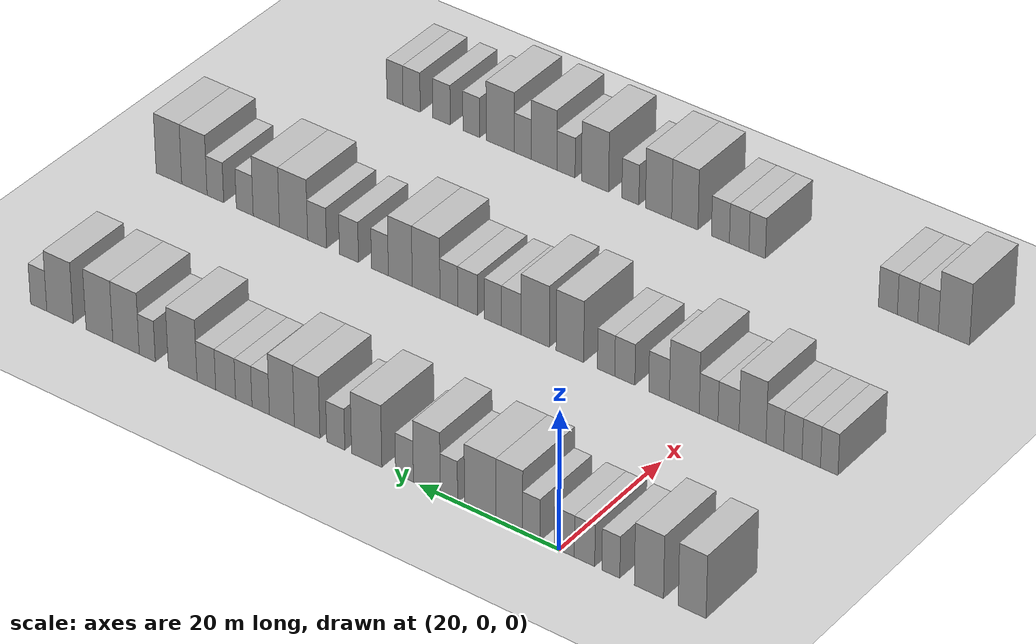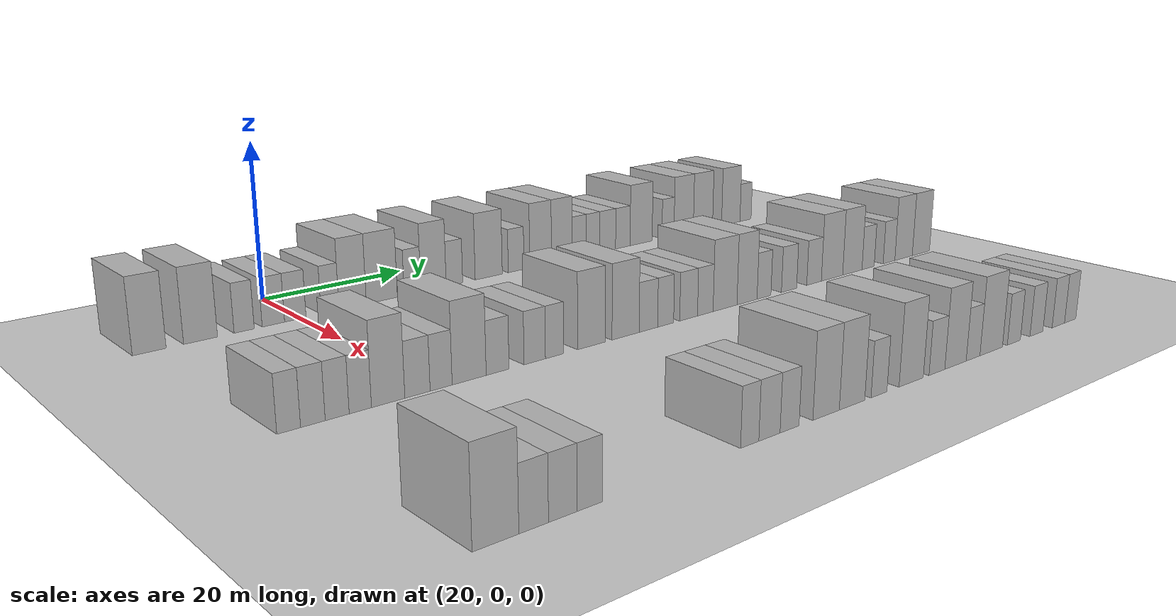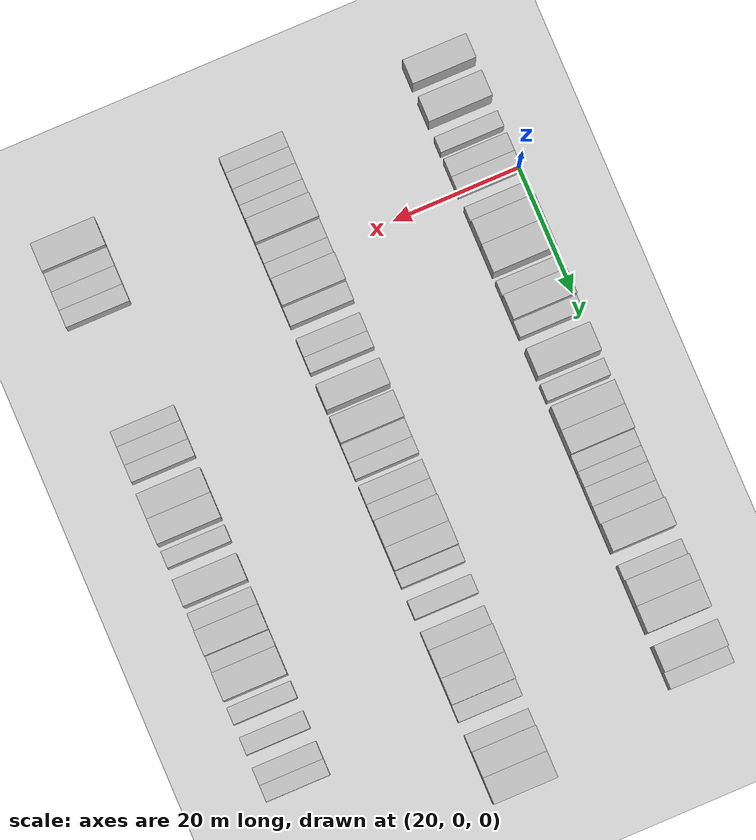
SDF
<sdf version="1.6">
 <world name="default">
  <include><name>ground_plane_1</name><uri>model://HANNAS_ground_plane</uri></include>
  <model name="building_109">
   <static>1</static>
   <pose>25.0000 -18.2849 0 0.000000 0.000000 0.000000</pose>
   <link name="link">
    <pose>0 0 4.50 0 0 0</pose>
    <collision name="collision"><geometry><box><size>10.0000 3.7971 9.0000</size></box></geometry></collision>
    <visual name="visual">
     <cast_shadows>0</cast_shadows>
     <geometry><box><size>10.0000 3.7971 9.0000</size></box></geometry>
     <material>
      <script>
       <uri>model://HANNAS_wall/materials/scripts</uri>
       <uri>model://HANNAS_wall/materials/textures</uri>
       <name>vrc/HANNAS_wall</name>
      </script>
     </material>
    </visual>
   </link>
  </model>
  <model name="building_110">
   <static>1</static>
   <pose>25.0000 -12.3850 0 0.000000 0.000000 0.000000</pose>
   <link name="link">
    <pose>0 0 4.50 0 0 0</pose>
    <collision name="collision"><geometry><box><size>10.0000 4.0027 9.0000</size></box></geometry></collision>
    <visual name="visual">
     <cast_shadows>0</cast_shadows>
     <geometry><box><size>10.0000 4.0027 9.0000</size></box></geometry>
     <material>
      <script>
       <uri>model://HANNAS_wall/materials/scripts</uri>
       <uri>model://HANNAS_wall/materials/textures</uri>
       <name>vrc/HANNAS_wall</name>
      </script>
     </material>
    </visual>
   </link>
  </model>
  <model name="building_111">
   <static>1</static>
   <pose>25.0000 -7.1429 0 0.000000 0.000000 0.000000</pose>
   <link name="link">
    <pose>0 0 3.00 0 0 0</pose>
    <collision name="collision"><geometry><box><size>10.0000 2.4817 6.0000</size></box></geometry></collision>
    <visual name="visual">
     <cast_shadows>0</cast_shadows>
     <geometry><box><size>10.0000 2.4817 6.0000</size></box></geometry>
     <material>
      <script>
       <uri>model://HANNAS_wall/materials/scripts</uri>
       <uri>model://HANNAS_wall/materials/textures</uri>
       <name>vrc/HANNAS_wall</name>
      </script>
     </material>
    </visual>
   </link>
  </model>
  <model name="building_112">
   <static>1</static>
   <pose>25.0000 -3.4787 0 0.000000 0.000000 0.000000</pose>
   <link name="link">
    <pose>0 0 3.00 0 0 0</pose>
    <collision name="collision"><geometry><box><size>10.0000 2.8465 6.0000</size></box></geometry></collision>
    <visual name="visual">
     <cast_shadows>0</cast_shadows>
     <geometry><box><size>10.0000 2.8465 6.0000</size></box></geometry>
     <material>
      <script>
       <uri>model://HANNAS_wall/materials/scripts</uri>
       <uri>model://HANNAS_wall/materials/textures</uri>
       <name>vrc/HANNAS_wall</name>
      </script>
     </material>
    </visual>
   </link>
  </model>
  <model name="building_113">
   <static>1</static>
   <pose>25.0000 -0.6544 0 0.000000 0.000000 0.000000</pose>
   <link name="link">
    <pose>0 0 3.00 0 0 0</pose>
    <collision name="collision"><geometry><box><size>10.0000 2.8022 6.0000</size></box></geometry></collision>
    <visual name="visual">
     <cast_shadows>0</cast_shadows>
     <geometry><box><size>10.0000 2.8022 6.0000</size></box></geometry>
     <material>
      <script>
       <uri>model://HANNAS_wall/materials/scripts</uri>
       <uri>model://HANNAS_wall/materials/textures</uri>
       <name>vrc/HANNAS_wall</name>
      </script>
     </material>
    </visual>
   </link>
  </model>
  <model name="building_114">
   <static>1</static>
   <pose>25.0000 3.9641 0 0.000000 0.000000 0.000000</pose>
   <link name="link">
    <pose>0 0 3.00 0 0 0</pose>
    <collision name="collision"><geometry><box><size>10.0000 2.4347 6.0000</size></box></geometry></collision>
    <visual name="visual">
     <cast_shadows>0</cast_shadows>
     <geometry><box><size>10.0000 2.4347 6.0000</size></box></geometry>
     <material>
      <script>
       <uri>model://HANNAS_wall/materials/scripts</uri>
       <uri>model://HANNAS_wall/materials/textures</uri>
       <name>vrc/HANNAS_wall</name>
      </script>
     </material>
    </visual>
   </link>
  </model>
  <model name="building_115">
   <static>1</static>
   <pose>25.0000 7.0820 0 0.000000 0.000000 0.000000</pose>
   <link name="link">
    <pose>0 0 4.50 0 0 0</pose>
    <collision name="collision"><geometry><box><size>10.0000 3.8012 9.0000</size></box></geometry></collision>
    <visual name="visual">
     <cast_shadows>0</cast_shadows>
     <geometry><box><size>10.0000 3.8012 9.0000</size></box></geometry>
     <material>
      <script>
       <uri>model://HANNAS_wall/materials/scripts</uri>
       <uri>model://HANNAS_wall/materials/textures</uri>
       <name>vrc/HANNAS_wall</name>
      </script>
     </material>
    </visual>
   </link>
  </model>
  <model name="building_116">
   <static>1</static>
   <pose>25.0000 11.2135 0 0.000000 0.000000 0.000000</pose>
   <link name="link">
    <pose>0 0 4.50 0 0 0</pose>
    <collision name="collision"><geometry><box><size>10.0000 4.4617 9.0000</size></box></geometry></collision>
    <visual name="visual">
     <cast_shadows>0</cast_shadows>
     <geometry><box><size>10.0000 4.4617 9.0000</size></box></geometry>
     <material>
      <script>
       <uri>model://HANNAS_wall/materials/scripts</uri>
       <uri>model://HANNAS_wall/materials/textures</uri>
       <name>vrc/HANNAS_wall</name>
      </script>
     </material>
    </visual>
   </link>
  </model>
  <model name="building_117">
   <static>1</static>
   <pose>25.0000 15.6870 0 0.000000 0.000000 0.000000</pose>
   <link name="link">
    <pose>0 0 3.00 0 0 0</pose>
    <collision name="collision"><geometry><box><size>10.0000 2.4852 6.0000</size></box></geometry></collision>
    <visual name="visual">
     <cast_shadows>0</cast_shadows>
     <geometry><box><size>10.0000 2.4852 6.0000</size></box></geometry>
     <material>
      <script>
       <uri>model://HANNAS_wall/materials/scripts</uri>
       <uri>model://HANNAS_wall/materials/textures</uri>
       <name>vrc/HANNAS_wall</name>
      </script>
     </material>
    </visual>
   </link>
  </model>
  <model name="building_118">
   <static>1</static>
   <pose>25.0000 18.8671 0 0.000000 0.000000 0.000000</pose>
   <link name="link">
    <pose>0 0 4.50 0 0 0</pose>
    <collision name="collision"><geometry><box><size>10.0000 3.8751 9.0000</size></box></geometry></collision>
    <visual name="visual">
     <cast_shadows>0</cast_shadows>
     <geometry><box><size>10.0000 3.8751 9.0000</size></box></geometry>
     <material>
      <script>
       <uri>model://HANNAS_wall/materials/scripts</uri>
       <uri>model://HANNAS_wall/materials/textures</uri>
       <name>vrc/HANNAS_wall</name>
      </script>
     </material>
    </visual>
   </link>
  </model>
  <model name="building_119">
   <static>1</static>
   <pose>25.0000 22.0942 0 0.000000 0.000000 0.000000</pose>
   <link name="link">
    <pose>0 0 3.00 0 0 0</pose>
    <collision name="collision"><geometry><box><size>10.0000 2.5792 6.0000</size></box></geometry></collision>
    <visual name="visual">
     <cast_shadows>0</cast_shadows>
     <geometry><box><size>10.0000 2.5792 6.0000</size></box></geometry>
     <material>
      <script>
       <uri>model://HANNAS_wall/materials/scripts</uri>
       <uri>model://HANNAS_wall/materials/textures</uri>
       <name>vrc/HANNAS_wall</name>
      </script>
     </material>
    </visual>
   </link>
  </model>
  <model name="building_120">
   <static>1</static>
   <pose>25.0000 27.5964 0 0.000000 0.000000 0.000000</pose>
   <link name="link">
    <pose>0 0 4.50 0 0 0</pose>
    <collision name="collision"><geometry><box><size>10.0000 4.4252 9.0000</size></box></geometry></collision>
    <visual name="visual">
     <cast_shadows>0</cast_shadows>
     <geometry><box><size>10.0000 4.4252 9.0000</size></box></geometry>
     <material>
      <script>
       <uri>model://HANNAS_wall/materials/scripts</uri>
       <uri>model://HANNAS_wall/materials/textures</uri>
       <name>vrc/HANNAS_wall</name>
      </script>
     </material>
    </visual>
   </link>
  </model>
  <model name="building_121">
   <static>1</static>
   <pose>25.0000 32.1364 0 0.000000 0.000000 0.000000</pose>
   <link name="link">
    <pose>0 0 3.00 0 0 0</pose>
    <collision name="collision"><geometry><box><size>10.0000 2.6548 6.0000</size></box></geometry></collision>
    <visual name="visual">
     <cast_shadows>0</cast_shadows>
     <geometry><box><size>10.0000 2.6548 6.0000</size></box></geometry>
     <material>
      <script>
       <uri>model://HANNAS_wall/materials/scripts</uri>
       <uri>model://HANNAS_wall/materials/textures</uri>
       <name>vrc/HANNAS_wall</name>
      </script>
     </material>
    </visual>
   </link>
  </model>
  <model name="building_122">
   <static>1</static>
   <pose>25.0000 36.3586 0 0.000000 0.000000 0.000000</pose>
   <link name="link">
    <pose>0 0 4.50 0 0 0</pose>
    <collision name="collision"><geometry><box><size>10.0000 3.7895 9.0000</size></box></geometry></collision>
    <visual name="visual">
     <cast_shadows>0</cast_shadows>
     <geometry><box><size>10.0000 3.7895 9.0000</size></box></geometry>
     <material>
      <script>
       <uri>model://HANNAS_wall/materials/scripts</uri>
       <uri>model://HANNAS_wall/materials/textures</uri>
       <name>vrc/HANNAS_wall</name>
      </script>
     </material>
    </visual>
   </link>
  </model>
  <model name="building_123">
   <static>1</static>
   <pose>25.0000 40.1152 0 0.000000 0.000000 0.000000</pose>
   <link name="link">
    <pose>0 0 4.50 0 0 0</pose>
    <collision name="collision"><geometry><box><size>10.0000 3.7238 9.0000</size></box></geometry></collision>
    <visual name="visual">
     <cast_shadows>0</cast_shadows>
     <geometry><box><size>10.0000 3.7238 9.0000</size></box></geometry>
     <material>
      <script>
       <uri>model://HANNAS_wall/materials/scripts</uri>
       <uri>model://HANNAS_wall/materials/textures</uri>
       <name>vrc/HANNAS_wall</name>
      </script>
     </material>
    </visual>
   </link>
  </model>
  <model name="building_124">
   <static>1</static>
   <pose>25.0000 43.2806 0 0.000000 0.000000 0.000000</pose>
   <link name="link">
    <pose>0 0 3.00 0 0 0</pose>
    <collision name="collision"><geometry><box><size>10.0000 2.6070 6.0000</size></box></geometry></collision>
    <visual name="visual">
     <cast_shadows>0</cast_shadows>
     <geometry><box><size>10.0000 2.6070 6.0000</size></box></geometry>
     <material>
      <script>
       <uri>model://HANNAS_wall/materials/scripts</uri>
       <uri>model://HANNAS_wall/materials/textures</uri>
       <name>vrc/HANNAS_wall</name>
      </script>
     </material>
    </visual>
   </link>
  </model>
  <model name="building_125">
   <static>1</static>
   <pose>25.0000 45.8217 0 0.000000 0.000000 0.000000</pose>
   <link name="link">
    <pose>0 0 3.00 0 0 0</pose>
    <collision name="collision"><geometry><box><size>10.0000 2.4751 6.0000</size></box></geometry></collision>
    <visual name="visual">
     <cast_shadows>0</cast_shadows>
     <geometry><box><size>10.0000 2.4751 6.0000</size></box></geometry>
     <material>
      <script>
       <uri>model://HANNAS_wall/materials/scripts</uri>
       <uri>model://HANNAS_wall/materials/textures</uri>
       <name>vrc/HANNAS_wall</name>
      </script>
     </material>
    </visual>
   </link>
  </model>
  <model name="building_126">
   <static>1</static>
   <pose>25.0000 48.5574 0 0.000000 0.000000 0.000000</pose>
   <link name="link">
    <pose>0 0 3.00 0 0 0</pose>
    <collision name="collision"><geometry><box><size>10.0000 2.9963 6.0000</size></box></geometry></collision>
    <visual name="visual">
     <cast_shadows>0</cast_shadows>
     <geometry><box><size>10.0000 2.9963 6.0000</size></box></geometry>
     <material>
      <script>
       <uri>model://HANNAS_wall/materials/scripts</uri>
       <uri>model://HANNAS_wall/materials/textures</uri>
       <name>vrc/HANNAS_wall</name>
      </script>
     </material>
    </visual>
   </link>
  </model>
  <model name="building_127">
   <static>1</static>
   <pose>25.0000 51.4734 0 0.000000 0.000000 0.000000</pose>
   <link name="link">
    <pose>0 0 3.00 0 0 0</pose>
    <collision name="collision"><geometry><box><size>10.0000 2.8357 6.0000</size></box></geometry></collision>
    <visual name="visual">
     <cast_shadows>0</cast_shadows>
     <geometry><box><size>10.0000 2.8357 6.0000</size></box></geometry>
     <material>
      <script>
       <uri>model://HANNAS_wall/materials/scripts</uri>
       <uri>model://HANNAS_wall/materials/textures</uri>
       <name>vrc/HANNAS_wall</name>
      </script>
     </material>
    </visual>
   </link>
  </model>
  <model name="building_128">
   <static>1</static>
   <pose>25.0000 55.0768 0 0.000000 0.000000 0.000000</pose>
   <link name="link">
    <pose>0 0 4.50 0 0 0</pose>
    <collision name="collision"><geometry><box><size>10.0000 4.3711 9.0000</size></box></geometry></collision>
    <visual name="visual">
     <cast_shadows>0</cast_shadows>
     <geometry><box><size>10.0000 4.3711 9.0000</size></box></geometry>
     <material>
      <script>
       <uri>model://HANNAS_wall/materials/scripts</uri>
       <uri>model://HANNAS_wall/materials/textures</uri>
       <name>vrc/HANNAS_wall</name>
      </script>
     </material>
    </visual>
   </link>
  </model>
  <model name="building_129">
   <static>1</static>
   <pose>25.0000 60.4973 0 0.000000 0.000000 0.000000</pose>
   <link name="link">
    <pose>0 0 3.00 0 0 0</pose>
    <collision name="collision"><geometry><box><size>10.0000 2.4700 6.0000</size></box></geometry></collision>
    <visual name="visual">
     <cast_shadows>0</cast_shadows>
     <geometry><box><size>10.0000 2.4700 6.0000</size></box></geometry>
     <material>
      <script>
       <uri>model://HANNAS_wall/materials/scripts</uri>
       <uri>model://HANNAS_wall/materials/textures</uri>
       <name>vrc/HANNAS_wall</name>
      </script>
     </material>
    </visual>
   </link>
  </model>
  <model name="building_130">
   <static>1</static>
   <pose>25.0000 63.7684 0 0.000000 0.000000 0.000000</pose>
   <link name="link">
    <pose>0 0 4.50 0 0 0</pose>
    <collision name="collision"><geometry><box><size>10.0000 4.0723 9.0000</size></box></geometry></collision>
    <visual name="visual">
     <cast_shadows>0</cast_shadows>
     <geometry><box><size>10.0000 4.0723 9.0000</size></box></geometry>
     <material>
      <script>
       <uri>model://HANNAS_wall/materials/scripts</uri>
       <uri>model://HANNAS_wall/materials/textures</uri>
       <name>vrc/HANNAS_wall</name>
      </script>
     </material>
    </visual>
   </link>
  </model>
  <model name="building_131">
   <static>1</static>
   <pose>25.0000 67.8888 0 0.000000 0.000000 0.000000</pose>
   <link name="link">
    <pose>0 0 4.50 0 0 0</pose>
    <collision name="collision"><geometry><box><size>10.0000 4.1684 9.0000</size></box></geometry></collision>
    <visual name="visual">
     <cast_shadows>0</cast_shadows>
     <geometry><box><size>10.0000 4.1684 9.0000</size></box></geometry>
     <material>
      <script>
       <uri>model://HANNAS_wall/materials/scripts</uri>
       <uri>model://HANNAS_wall/materials/textures</uri>
       <name>vrc/HANNAS_wall</name>
      </script>
     </material>
    </visual>
   </link>
  </model>
  <model name="building_132">
   <static>1</static>
   <pose>25.0000 74.0466 0 0.000000 0.000000 0.000000</pose>
   <link name="link">
    <pose>0 0 4.50 0 0 0</pose>
    <collision name="collision"><geometry><box><size>10.0000 4.1474 9.0000</size></box></geometry></collision>
    <visual name="visual">
     <cast_shadows>0</cast_shadows>
     <geometry><box><size>10.0000 4.1474 9.0000</size></box></geometry>
     <material>
      <script>
       <uri>model://HANNAS_wall/materials/scripts</uri>
       <uri>model://HANNAS_wall/materials/textures</uri>
       <name>vrc/HANNAS_wall</name>
      </script>
     </material>
    </visual>
   </link>
  </model>
  <model name="building_133">
   <static>1</static>
   <pose>25.0000 77.4012 0 0.000000 0.000000 0.000000</pose>
   <link name="link">
    <pose>0 0 3.00 0 0 0</pose>
    <collision name="collision"><geometry><box><size>10.0000 2.5617 6.0000</size></box></geometry></collision>
    <visual name="visual">
     <cast_shadows>0</cast_shadows>
     <geometry><box><size>10.0000 2.5617 6.0000</size></box></geometry>
     <material>
      <script>
       <uri>model://HANNAS_wall/materials/scripts</uri>
       <uri>model://HANNAS_wall/materials/textures</uri>
       <name>vrc/HANNAS_wall</name>
      </script>
     </material>
    </visual>
   </link>
  </model>
  <model name="building_342">
   <static>1</static>
   <pose>55.0000 -16.6224 0 0.000000 0.000000 0.000000</pose>
   <link name="link">
    <pose>0 0 3.00 0 0 0</pose>
    <collision name="collision"><geometry><box><size>10.0000 2.4258 6.0000</size></box></geometry></collision>
    <visual name="visual">
     <cast_shadows>0</cast_shadows>
     <geometry><box><size>10.0000 2.4258 6.0000</size></box></geometry>
     <material>
      <script>
       <uri>model://HANNAS_wall/materials/scripts</uri>
       <uri>model://HANNAS_wall/materials/textures</uri>
       <name>vrc/HANNAS_wall</name>
      </script>
     </material>
    </visual>
   </link>
  </model>
  <model name="building_343">
   <static>1</static>
   <pose>55.0000 -14.1209 0 0.000000 0.000000 0.000000</pose>
   <link name="link">
    <pose>0 0 3.00 0 0 0</pose>
    <collision name="collision"><geometry><box><size>10.0000 2.5771 6.0000</size></box></geometry></collision>
    <visual name="visual">
     <cast_shadows>0</cast_shadows>
     <geometry><box><size>10.0000 2.5771 6.0000</size></box></geometry>
     <material>
      <script>
       <uri>model://HANNAS_wall/materials/scripts</uri>
       <uri>model://HANNAS_wall/materials/textures</uri>
       <name>vrc/HANNAS_wall</name>
      </script>
     </material>
    </visual>
   </link>
  </model>
  <model name="building_344">
   <static>1</static>
   <pose>55.0000 -11.5454 0 0.000000 0.000000 0.000000</pose>
   <link name="link">
    <pose>0 0 3.00 0 0 0</pose>
    <collision name="collision"><geometry><box><size>10.0000 2.5738 6.0000</size></box></geometry></collision>
    <visual name="visual">
     <cast_shadows>0</cast_shadows>
     <geometry><box><size>10.0000 2.5738 6.0000</size></box></geometry>
     <material>
      <script>
       <uri>model://HANNAS_wall/materials/scripts</uri>
       <uri>model://HANNAS_wall/materials/textures</uri>
       <name>vrc/HANNAS_wall</name>
      </script>
     </material>
    </visual>
   </link>
  </model>
  <model name="building_345">
   <static>1</static>
   <pose>55.0000 -9.0309 0 0.000000 0.000000 0.000000</pose>
   <link name="link">
    <pose>0 0 3.00 0 0 0</pose>
    <collision name="collision"><geometry><box><size>10.0000 2.4552 6.0000</size></box></geometry></collision>
    <visual name="visual">
     <cast_shadows>0</cast_shadows>
     <geometry><box><size>10.0000 2.4552 6.0000</size></box></geometry>
     <material>
      <script>
       <uri>model://HANNAS_wall/materials/scripts</uri>
       <uri>model://HANNAS_wall/materials/textures</uri>
       <name>vrc/HANNAS_wall</name>
      </script>
     </material>
    </visual>
   </link>
  </model>
  <model name="building_346">
   <static>1</static>
   <pose>55.0000 -5.9031 0 0.000000 0.000000 0.000000</pose>
   <link name="link">
    <pose>0 0 4.50 0 0 0</pose>
    <collision name="collision"><geometry><box><size>10.0000 3.8003 9.0000</size></box></geometry></collision>
    <visual name="visual">
     <cast_shadows>0</cast_shadows>
     <geometry><box><size>10.0000 3.8003 9.0000</size></box></geometry>
     <material>
      <script>
       <uri>model://HANNAS_wall/materials/scripts</uri>
       <uri>model://HANNAS_wall/materials/textures</uri>
       <name>vrc/HANNAS_wall</name>
      </script>
     </material>
    </visual>
   </link>
  </model>
  <model name="building_347">
   <static>1</static>
   <pose>55.0000 -2.5124 0 0.000000 0.000000 0.000000</pose>
   <link name="link">
    <pose>0 0 3.00 0 0 0</pose>
    <collision name="collision"><geometry><box><size>10.0000 2.9811 6.0000</size></box></geometry></collision>
    <visual name="visual">
     <cast_shadows>0</cast_shadows>
     <geometry><box><size>10.0000 2.9811 6.0000</size></box></geometry>
     <material>
      <script>
       <uri>model://HANNAS_wall/materials/scripts</uri>
       <uri>model://HANNAS_wall/materials/textures</uri>
       <name>vrc/HANNAS_wall</name>
      </script>
     </material>
    </visual>
   </link>
  </model>
  <model name="building_348">
   <static>1</static>
   <pose>55.0000 0.3127 0 0.000000 0.000000 0.000000</pose>
   <link name="link">
    <pose>0 0 3.00 0 0 0</pose>
    <collision name="collision"><geometry><box><size>10.0000 2.6691 6.0000</size></box></geometry></collision>
    <visual name="visual">
     <cast_shadows>0</cast_shadows>
     <geometry><box><size>10.0000 2.6691 6.0000</size></box></geometry>
     <material>
      <script>
       <uri>model://HANNAS_wall/materials/scripts</uri>
       <uri>model://HANNAS_wall/materials/textures</uri>
       <name>vrc/HANNAS_wall</name>
      </script>
     </material>
    </visual>
   </link>
  </model>
  <model name="building_349">
   <static>1</static>
   <pose>55.0000 3.7800 0 0.000000 0.000000 0.000000</pose>
   <link name="link">
    <pose>0 0 4.50 0 0 0</pose>
    <collision name="collision"><geometry><box><size>10.0000 4.2656 9.0000</size></box></geometry></collision>
    <visual name="visual">
     <cast_shadows>0</cast_shadows>
     <geometry><box><size>10.0000 4.2656 9.0000</size></box></geometry>
     <material>
      <script>
       <uri>model://HANNAS_wall/materials/scripts</uri>
       <uri>model://HANNAS_wall/materials/textures</uri>
       <name>vrc/HANNAS_wall</name>
      </script>
     </material>
    </visual>
   </link>
  </model>
  <model name="building_350">
   <static>1</static>
   <pose>55.0000 7.3949 0 0.000000 0.000000 0.000000</pose>
   <link name="link">
    <pose>0 0 3.00 0 0 0</pose>
    <collision name="collision"><geometry><box><size>10.0000 2.9641 6.0000</size></box></geometry></collision>
    <visual name="visual">
     <cast_shadows>0</cast_shadows>
     <geometry><box><size>10.0000 2.9641 6.0000</size></box></geometry>
     <material>
      <script>
       <uri>model://HANNAS_wall/materials/scripts</uri>
       <uri>model://HANNAS_wall/materials/textures</uri>
       <name>vrc/HANNAS_wall</name>
      </script>
     </material>
    </visual>
   </link>
  </model>
  <model name="building_351">
   <static>1</static>
   <pose>55.0000 12.3281 0 0.000000 0.000000 0.000000</pose>
   <link name="link">
    <pose>0 0 3.00 0 0 0</pose>
    <collision name="collision"><geometry><box><size>10.0000 2.9023 6.0000</size></box></geometry></collision>
    <visual name="visual">
     <cast_shadows>0</cast_shadows>
     <geometry><box><size>10.0000 2.9023 6.0000</size></box></geometry>
     <material>
      <script>
       <uri>model://HANNAS_wall/materials/scripts</uri>
       <uri>model://HANNAS_wall/materials/textures</uri>
       <name>vrc/HANNAS_wall</name>
      </script>
     </material>
    </visual>
   </link>
  </model>
  <model name="building_352">
   <static>1</static>
   <pose>55.0000 15.0451 0 0.000000 0.000000 0.000000</pose>
   <link name="link">
    <pose>0 0 3.00 0 0 0</pose>
    <collision name="collision"><geometry><box><size>10.0000 2.5317 6.0000</size></box></geometry></collision>
    <visual name="visual">
     <cast_shadows>0</cast_shadows>
     <geometry><box><size>10.0000 2.5317 6.0000</size></box></geometry>
     <material>
      <script>
       <uri>model://HANNAS_wall/materials/scripts</uri>
       <uri>model://HANNAS_wall/materials/textures</uri>
       <name>vrc/HANNAS_wall</name>
      </script>
     </material>
    </visual>
   </link>
  </model>
  <model name="building_353">
   <static>1</static>
   <pose>55.0000 20.3383 0 0.000000 0.000000 0.000000</pose>
   <link name="link">
    <pose>0 0 4.50 0 0 0</pose>
    <collision name="collision"><geometry><box><size>10.0000 4.0547 9.0000</size></box></geometry></collision>
    <visual name="visual">
     <cast_shadows>0</cast_shadows>
     <geometry><box><size>10.0000 4.0547 9.0000</size></box></geometry>
     <material>
      <script>
       <uri>model://HANNAS_wall/materials/scripts</uri>
       <uri>model://HANNAS_wall/materials/textures</uri>
       <name>vrc/HANNAS_wall</name>
      </script>
     </material>
    </visual>
   </link>
  </model>
  <model name="building_354">
   <static>1</static>
   <pose>55.0000 25.4451 0 0.000000 0.000000 0.000000</pose>
   <link name="link">
    <pose>0 0 4.50 0 0 0</pose>
    <collision name="collision"><geometry><box><size>10.0000 4.1590 9.0000</size></box></geometry></collision>
    <visual name="visual">
     <cast_shadows>0</cast_shadows>
     <geometry><box><size>10.0000 4.1590 9.0000</size></box></geometry>
     <material>
      <script>
       <uri>model://HANNAS_wall/materials/scripts</uri>
       <uri>model://HANNAS_wall/materials/textures</uri>
       <name>vrc/HANNAS_wall</name>
      </script>
     </material>
    </visual>
   </link>
  </model>
  <model name="building_355">
   <static>1</static>
   <pose>55.0000 28.9817 0 0.000000 0.000000 0.000000</pose>
   <link name="link">
    <pose>0 0 3.00 0 0 0</pose>
    <collision name="collision"><geometry><box><size>10.0000 2.9141 6.0000</size></box></geometry></collision>
    <visual name="visual">
     <cast_shadows>0</cast_shadows>
     <geometry><box><size>10.0000 2.9141 6.0000</size></box></geometry>
     <material>
      <script>
       <uri>model://HANNAS_wall/materials/scripts</uri>
       <uri>model://HANNAS_wall/materials/textures</uri>
       <name>vrc/HANNAS_wall</name>
      </script>
     </material>
    </visual>
   </link>
  </model>
  <model name="building_356">
   <static>1</static>
   <pose>55.0000 31.7313 0 0.000000 0.000000 0.000000</pose>
   <link name="link">
    <pose>0 0 3.00 0 0 0</pose>
    <collision name="collision"><geometry><box><size>10.0000 2.5852 6.0000</size></box></geometry></collision>
    <visual name="visual">
     <cast_shadows>0</cast_shadows>
     <geometry><box><size>10.0000 2.5852 6.0000</size></box></geometry>
     <material>
      <script>
       <uri>model://HANNAS_wall/materials/scripts</uri>
       <uri>model://HANNAS_wall/materials/textures</uri>
       <name>vrc/HANNAS_wall</name>
      </script>
     </material>
    </visual>
   </link>
  </model>
  <model name="building_357">
   <static>1</static>
   <pose>55.0000 35.5075 0 0.000000 0.000000 0.000000</pose>
   <link name="link">
    <pose>0 0 3.00 0 0 0</pose>
    <collision name="collision"><geometry><box><size>10.0000 2.9671 6.0000</size></box></geometry></collision>
    <visual name="visual">
     <cast_shadows>0</cast_shadows>
     <geometry><box><size>10.0000 2.9671 6.0000</size></box></geometry>
     <material>
      <script>
       <uri>model://HANNAS_wall/materials/scripts</uri>
       <uri>model://HANNAS_wall/materials/textures</uri>
       <name>vrc/HANNAS_wall</name>
      </script>
     </material>
    </visual>
   </link>
  </model>
  <model name="building_358">
   <static>1</static>
   <pose>55.0000 38.3250 0 0.000000 0.000000 0.000000</pose>
   <link name="link">
    <pose>0 0 3.00 0 0 0</pose>
    <collision name="collision"><geometry><box><size>10.0000 2.6680 6.0000</size></box></geometry></collision>
    <visual name="visual">
     <cast_shadows>0</cast_shadows>
     <geometry><box><size>10.0000 2.6680 6.0000</size></box></geometry>
     <material>
      <script>
       <uri>model://HANNAS_wall/materials/scripts</uri>
       <uri>model://HANNAS_wall/materials/textures</uri>
       <name>vrc/HANNAS_wall</name>
      </script>
     </material>
    </visual>
   </link>
  </model>
  <model name="building_359">
   <static>1</static>
   <pose>55.0000 41.7580 0 0.000000 0.000000 0.000000</pose>
   <link name="link">
    <pose>0 0 4.50 0 0 0</pose>
    <collision name="collision"><geometry><box><size>10.0000 4.1980 9.0000</size></box></geometry></collision>
    <visual name="visual">
     <cast_shadows>0</cast_shadows>
     <geometry><box><size>10.0000 4.1980 9.0000</size></box></geometry>
     <material>
      <script>
       <uri>model://HANNAS_wall/materials/scripts</uri>
       <uri>model://HANNAS_wall/materials/textures</uri>
       <name>vrc/HANNAS_wall</name>
      </script>
     </material>
    </visual>
   </link>
  </model>
  <model name="building_360">
   <static>1</static>
   <pose>55.0000 45.6775 0 0.000000 0.000000 0.000000</pose>
   <link name="link">
    <pose>0 0 4.50 0 0 0</pose>
    <collision name="collision"><geometry><box><size>10.0000 3.6411 9.0000</size></box></geometry></collision>
    <visual name="visual">
     <cast_shadows>0</cast_shadows>
     <geometry><box><size>10.0000 3.6411 9.0000</size></box></geometry>
     <material>
      <script>
       <uri>model://HANNAS_wall/materials/scripts</uri>
       <uri>model://HANNAS_wall/materials/textures</uri>
       <name>vrc/HANNAS_wall</name>
      </script>
     </material>
    </visual>
   </link>
  </model>
  <model name="building_361">
   <static>1</static>
   <pose>55.0000 48.7876 0 0.000000 0.000000 0.000000</pose>
   <link name="link">
    <pose>0 0 3.00 0 0 0</pose>
    <collision name="collision"><geometry><box><size>10.0000 2.5789 6.0000</size></box></geometry></collision>
    <visual name="visual">
     <cast_shadows>0</cast_shadows>
     <geometry><box><size>10.0000 2.5789 6.0000</size></box></geometry>
     <material>
      <script>
       <uri>model://HANNAS_wall/materials/scripts</uri>
       <uri>model://HANNAS_wall/materials/textures</uri>
       <name>vrc/HANNAS_wall</name>
      </script>
     </material>
    </visual>
   </link>
  </model>
  <model name="building_362">
   <static>1</static>
   <pose>55.0000 53.5422 0 0.000000 0.000000 0.000000</pose>
   <link name="link">
    <pose>0 0 3.00 0 0 0</pose>
    <collision name="collision"><geometry><box><size>10.0000 2.9303 6.0000</size></box></geometry></collision>
    <visual name="visual">
     <cast_shadows>0</cast_shadows>
     <geometry><box><size>10.0000 2.9303 6.0000</size></box></geometry>
     <material>
      <script>
       <uri>model://HANNAS_wall/materials/scripts</uri>
       <uri>model://HANNAS_wall/materials/textures</uri>
       <name>vrc/HANNAS_wall</name>
      </script>
     </material>
    </visual>
   </link>
  </model>
  <model name="building_363">
   <static>1</static>
   <pose>55.0000 58.4714 0 0.000000 0.000000 0.000000</pose>
   <link name="link">
    <pose>0 0 3.00 0 0 0</pose>
    <collision name="collision"><geometry><box><size>10.0000 2.9281 6.0000</size></box></geometry></collision>
    <visual name="visual">
     <cast_shadows>0</cast_shadows>
     <geometry><box><size>10.0000 2.9281 6.0000</size></box></geometry>
     <material>
      <script>
       <uri>model://HANNAS_wall/materials/scripts</uri>
       <uri>model://HANNAS_wall/materials/textures</uri>
       <name>vrc/HANNAS_wall</name>
      </script>
     </material>
    </visual>
   </link>
  </model>
  <model name="building_364">
   <static>1</static>
   <pose>55.0000 62.1343 0 0.000000 0.000000 0.000000</pose>
   <link name="link">
    <pose>0 0 4.50 0 0 0</pose>
    <collision name="collision"><geometry><box><size>10.0000 4.3977 9.0000</size></box></geometry></collision>
    <visual name="visual">
     <cast_shadows>0</cast_shadows>
     <geometry><box><size>10.0000 4.3977 9.0000</size></box></geometry>
     <material>
      <script>
       <uri>model://HANNAS_wall/materials/scripts</uri>
       <uri>model://HANNAS_wall/materials/textures</uri>
       <name>vrc/HANNAS_wall</name>
      </script>
     </material>
    </visual>
   </link>
  </model>
  <model name="building_365">
   <static>1</static>
   <pose>55.0000 66.3957 0 0.000000 0.000000 0.000000</pose>
   <link name="link">
    <pose>0 0 4.50 0 0 0</pose>
    <collision name="collision"><geometry><box><size>10.0000 4.1251 9.0000</size></box></geometry></collision>
    <visual name="visual">
     <cast_shadows>0</cast_shadows>
     <geometry><box><size>10.0000 4.1251 9.0000</size></box></geometry>
     <material>
      <script>
       <uri>model://HANNAS_wall/materials/scripts</uri>
       <uri>model://HANNAS_wall/materials/textures</uri>
       <name>vrc/HANNAS_wall</name>
      </script>
     </material>
    </visual>
   </link>
  </model>
  <model name="building_366">
   <static>1</static>
   <pose>55.0000 69.7904 0 0.000000 0.000000 0.000000</pose>
   <link name="link">
    <pose>0 0 3.00 0 0 0</pose>
    <collision name="collision"><geometry><box><size>10.0000 2.6643 6.0000</size></box></geometry></collision>
    <visual name="visual">
     <cast_shadows>0</cast_shadows>
     <geometry><box><size>10.0000 2.6643 6.0000</size></box></geometry>
     <material>
      <script>
       <uri>model://HANNAS_wall/materials/scripts</uri>
       <uri>model://HANNAS_wall/materials/textures</uri>
       <name>vrc/HANNAS_wall</name>
      </script>
     </material>
    </visual>
   </link>
  </model>
  <model name="building_367">
   <static>1</static>
   <pose>55.0000 74.4450 0 0.000000 0.000000 0.000000</pose>
   <link name="link">
    <pose>0 0 3.00 0 0 0</pose>
    <collision name="collision"><geometry><box><size>10.0000 2.6450 6.0000</size></box></geometry></collision>
    <visual name="visual">
     <cast_shadows>0</cast_shadows>
     <geometry><box><size>10.0000 2.6450 6.0000</size></box></geometry>
     <material>
      <script>
       <uri>model://HANNAS_wall/materials/scripts</uri>
       <uri>model://HANNAS_wall/materials/textures</uri>
       <name>vrc/HANNAS_wall</name>
      </script>
     </material>
    </visual>
   </link>
  </model>
  <model name="building_368">
   <static>1</static>
   <pose>55.0000 77.7859 0 0.000000 0.000000 0.000000</pose>
   <link name="link">
    <pose>0 0 4.50 0 0 0</pose>
    <collision name="collision"><geometry><box><size>10.0000 4.0368 9.0000</size></box></geometry></collision>
    <visual name="visual">
     <cast_shadows>0</cast_shadows>
     <geometry><box><size>10.0000 4.0368 9.0000</size></box></geometry>
     <material>
      <script>
       <uri>model://HANNAS_wall/materials/scripts</uri>
       <uri>model://HANNAS_wall/materials/textures</uri>
       <name>vrc/HANNAS_wall</name>
      </script>
     </material>
    </visual>
   </link>
  </model>
  <model name="building_369">
   <static>1</static>
   <pose>55.0000 81.8554 0 0.000000 0.000000 0.000000</pose>
   <link name="link">
    <pose>0 0 4.50 0 0 0</pose>
    <collision name="collision"><geometry><box><size>10.0000 4.1021 9.0000</size></box></geometry></collision>
    <visual name="visual">
     <cast_shadows>0</cast_shadows>
     <geometry><box><size>10.0000 4.1021 9.0000</size></box></geometry>
     <material>
      <script>
       <uri>model://HANNAS_wall/materials/scripts</uri>
       <uri>model://HANNAS_wall/materials/textures</uri>
       <name>vrc/HANNAS_wall</name>
      </script>
     </material>
    </visual>
   </link>
  </model>
  <model name="building_585">
   <static>1</static>
   <pose>85.0000 -14.4391 0 0.000000 0.000000 0.000000</pose>
   <link name="link">
    <pose>0 0 4.50 0 0 0</pose>
    <collision name="collision"><geometry><box><size>10.0000 4.4153 9.0000</size></box></geometry></collision>
    <visual name="visual">
     <cast_shadows>0</cast_shadows>
     <geometry><box><size>10.0000 4.4153 9.0000</size></box></geometry>
     <material>
      <script>
       <uri>model://HANNAS_wall/materials/scripts</uri>
       <uri>model://HANNAS_wall/materials/textures</uri>
       <name>vrc/HANNAS_wall</name>
      </script>
     </material>
    </visual>
   </link>
  </model>
  <model name="building_586">
   <static>1</static>
   <pose>85.0000 -10.7679 0 0.000000 0.000000 0.000000</pose>
   <link name="link">
    <pose>0 0 3.00 0 0 0</pose>
    <collision name="collision"><geometry><box><size>10.0000 2.9270 6.0000</size></box></geometry></collision>
    <visual name="visual">
     <cast_shadows>0</cast_shadows>
     <geometry><box><size>10.0000 2.9270 6.0000</size></box></geometry>
     <material>
      <script>
       <uri>model://HANNAS_wall/materials/scripts</uri>
       <uri>model://HANNAS_wall/materials/textures</uri>
       <name>vrc/HANNAS_wall</name>
      </script>
     </material>
    </visual>
   </link>
  </model>
  <model name="building_587">
   <static>1</static>
   <pose>85.0000 -7.8441 0 0.000000 0.000000 0.000000</pose>
   <link name="link">
    <pose>0 0 3.00 0 0 0</pose>
    <collision name="collision"><geometry><box><size>10.0000 2.9205 6.0000</size></box></geometry></collision>
    <visual name="visual">
     <cast_shadows>0</cast_shadows>
     <geometry><box><size>10.0000 2.9205 6.0000</size></box></geometry>
     <material>
      <script>
       <uri>model://HANNAS_wall/materials/scripts</uri>
       <uri>model://HANNAS_wall/materials/textures</uri>
       <name>vrc/HANNAS_wall</name>
      </script>
     </material>
    </visual>
   </link>
  </model>
  <model name="building_588">
   <static>1</static>
   <pose>85.0000 -5.0353 0 0.000000 0.000000 0.000000</pose>
   <link name="link">
    <pose>0 0 3.00 0 0 0</pose>
    <collision name="collision"><geometry><box><size>10.0000 2.6972 6.0000</size></box></geometry></collision>
    <visual name="visual">
     <cast_shadows>0</cast_shadows>
     <geometry><box><size>10.0000 2.6972 6.0000</size></box></geometry>
     <material>
      <script>
       <uri>model://HANNAS_wall/materials/scripts</uri>
       <uri>model://HANNAS_wall/materials/textures</uri>
       <name>vrc/HANNAS_wall</name>
      </script>
     </material>
    </visual>
   </link>
  </model>
  <model name="building_589">
   <static>1</static>
   <pose>85.0000 13.9466 0 0.000000 0.000000 0.000000</pose>
   <link name="link">
    <pose>0 0 3.00 0 0 0</pose>
    <collision name="collision"><geometry><box><size>10.0000 2.4222 6.0000</size></box></geometry></collision>
    <visual name="visual">
     <cast_shadows>0</cast_shadows>
     <geometry><box><size>10.0000 2.4222 6.0000</size></box></geometry>
     <material>
      <script>
       <uri>model://HANNAS_wall/materials/scripts</uri>
       <uri>model://HANNAS_wall/materials/textures</uri>
       <name>vrc/HANNAS_wall</name>
      </script>
     </material>
    </visual>
   </link>
  </model>
  <model name="building_590">
   <static>1</static>
   <pose>85.0000 16.6053 0 0.000000 0.000000 0.000000</pose>
   <link name="link">
    <pose>0 0 3.00 0 0 0</pose>
    <collision name="collision"><geometry><box><size>10.0000 2.8953 6.0000</size></box></geometry></collision>
    <visual name="visual">
     <cast_shadows>0</cast_shadows>
     <geometry><box><size>10.0000 2.8953 6.0000</size></box></geometry>
     <material>
      <script>
       <uri>model://HANNAS_wall/materials/scripts</uri>
       <uri>model://HANNAS_wall/materials/textures</uri>
       <name>vrc/HANNAS_wall</name>
      </script>
     </material>
    </visual>
   </link>
  </model>
  <model name="building_591">
   <static>1</static>
   <pose>85.0000 19.3899 0 0.000000 0.000000 0.000000</pose>
   <link name="link">
    <pose>0 0 3.00 0 0 0</pose>
    <collision name="collision"><geometry><box><size>10.0000 2.6739 6.0000</size></box></geometry></collision>
    <visual name="visual">
     <cast_shadows>0</cast_shadows>
     <geometry><box><size>10.0000 2.6739 6.0000</size></box></geometry>
     <material>
      <script>
       <uri>model://HANNAS_wall/materials/scripts</uri>
       <uri>model://HANNAS_wall/materials/textures</uri>
       <name>vrc/HANNAS_wall</name>
      </script>
     </material>
    </visual>
   </link>
  </model>
  <model name="building_592">
   <static>1</static>
   <pose>85.0000 24.6922 0 0.000000 0.000000 0.000000</pose>
   <link name="link">
    <pose>0 0 4.50 0 0 0</pose>
    <collision name="collision"><geometry><box><size>10.0000 3.9306 9.0000</size></box></geometry></collision>
    <visual name="visual">
     <cast_shadows>0</cast_shadows>
     <geometry><box><size>10.0000 3.9306 9.0000</size></box></geometry>
     <material>
      <script>
       <uri>model://HANNAS_wall/materials/scripts</uri>
       <uri>model://HANNAS_wall/materials/textures</uri>
       <name>vrc/HANNAS_wall</name>
      </script>
     </material>
    </visual>
   </link>
  </model>
  <model name="building_593">
   <static>1</static>
   <pose>85.0000 28.6307 0 0.000000 0.000000 0.000000</pose>
   <link name="link">
    <pose>0 0 4.50 0 0 0</pose>
    <collision name="collision"><geometry><box><size>10.0000 3.9464 9.0000</size></box></geometry></collision>
    <visual name="visual">
     <cast_shadows>0</cast_shadows>
     <geometry><box><size>10.0000 3.9464 9.0000</size></box></geometry>
     <material>
      <script>
       <uri>model://HANNAS_wall/materials/scripts</uri>
       <uri>model://HANNAS_wall/materials/textures</uri>
       <name>vrc/HANNAS_wall</name>
      </script>
     </material>
    </visual>
   </link>
  </model>
  <model name="building_594">
   <static>1</static>
   <pose>85.0000 32.8923 0 0.000000 0.000000 0.000000</pose>
   <link name="link">
    <pose>0 0 3.00 0 0 0</pose>
    <collision name="collision"><geometry><box><size>10.0000 2.5768 6.0000</size></box></geometry></collision>
    <visual name="visual">
     <cast_shadows>0</cast_shadows>
     <geometry><box><size>10.0000 2.5768 6.0000</size></box></geometry>
     <material>
      <script>
       <uri>model://HANNAS_wall/materials/scripts</uri>
       <uri>model://HANNAS_wall/materials/textures</uri>
       <name>vrc/HANNAS_wall</name>
      </script>
     </material>
    </visual>
   </link>
  </model>
  <model name="building_595">
   <static>1</static>
   <pose>85.0000 38.2512 0 0.000000 0.000000 0.000000</pose>
   <link name="link">
    <pose>0 0 4.50 0 0 0</pose>
    <collision name="collision"><geometry><box><size>10.0000 4.1411 9.0000</size></box></geometry></collision>
    <visual name="visual">
     <cast_shadows>0</cast_shadows>
     <geometry><box><size>10.0000 4.1411 9.0000</size></box></geometry>
     <material>
      <script>
       <uri>model://HANNAS_wall/materials/scripts</uri>
       <uri>model://HANNAS_wall/materials/textures</uri>
       <name>vrc/HANNAS_wall</name>
      </script>
     </material>
    </visual>
   </link>
  </model>
  <model name="building_596">
   <static>1</static>
   <pose>85.0000 42.7256 0 0.000000 0.000000 0.000000</pose>
   <link name="link">
    <pose>0 0 3.00 0 0 0</pose>
    <collision name="collision"><geometry><box><size>10.0000 2.8076 6.0000</size></box></geometry></collision>
    <visual name="visual">
     <cast_shadows>0</cast_shadows>
     <geometry><box><size>10.0000 2.8076 6.0000</size></box></geometry>
     <material>
      <script>
       <uri>model://HANNAS_wall/materials/scripts</uri>
       <uri>model://HANNAS_wall/materials/textures</uri>
       <name>vrc/HANNAS_wall</name>
      </script>
     </material>
    </visual>
   </link>
  </model>
  <model name="building_597">
   <static>1</static>
   <pose>85.0000 46.1026 0 0.000000 0.000000 0.000000</pose>
   <link name="link">
    <pose>0 0 4.50 0 0 0</pose>
    <collision name="collision"><geometry><box><size>10.0000 3.9463 9.0000</size></box></geometry></collision>
    <visual name="visual">
     <cast_shadows>0</cast_shadows>
     <geometry><box><size>10.0000 3.9463 9.0000</size></box></geometry>
     <material>
      <script>
       <uri>model://HANNAS_wall/materials/scripts</uri>
       <uri>model://HANNAS_wall/materials/textures</uri>
       <name>vrc/HANNAS_wall</name>
      </script>
     </material>
    </visual>
   </link>
  </model>
  <model name="building_598">
   <static>1</static>
   <pose>85.0000 49.3766 0 0.000000 0.000000 0.000000</pose>
   <link name="link">
    <pose>0 0 3.00 0 0 0</pose>
    <collision name="collision"><geometry><box><size>10.0000 2.6016 6.0000</size></box></geometry></collision>
    <visual name="visual">
     <cast_shadows>0</cast_shadows>
     <geometry><box><size>10.0000 2.6016 6.0000</size></box></geometry>
     <material>
      <script>
       <uri>model://HANNAS_wall/materials/scripts</uri>
       <uri>model://HANNAS_wall/materials/textures</uri>
       <name>vrc/HANNAS_wall</name>
      </script>
     </material>
    </visual>
   </link>
  </model>
  <model name="building_599">
   <static>1</static>
   <pose>85.0000 52.8792 0 0.000000 0.000000 0.000000</pose>
   <link name="link">
    <pose>0 0 4.50 0 0 0</pose>
    <collision name="collision"><geometry><box><size>10.0000 4.4036 9.0000</size></box></geometry></collision>
    <visual name="visual">
     <cast_shadows>0</cast_shadows>
     <geometry><box><size>10.0000 4.4036 9.0000</size></box></geometry>
     <material>
      <script>
       <uri>model://HANNAS_wall/materials/scripts</uri>
       <uri>model://HANNAS_wall/materials/textures</uri>
       <name>vrc/HANNAS_wall</name>
      </script>
     </material>
    </visual>
   </link>
  </model>
  <model name="building_600">
   <static>1</static>
   <pose>85.0000 57.4080 0 0.000000 0.000000 0.000000</pose>
   <link name="link">
    <pose>0 0 3.00 0 0 0</pose>
    <collision name="collision"><geometry><box><size>10.0000 2.6540 6.0000</size></box></geometry></collision>
    <visual name="visual">
     <cast_shadows>0</cast_shadows>
     <geometry><box><size>10.0000 2.6540 6.0000</size></box></geometry>
     <material>
      <script>
       <uri>model://HANNAS_wall/materials/scripts</uri>
       <uri>model://HANNAS_wall/materials/textures</uri>
       <name>vrc/HANNAS_wall</name>
      </script>
     </material>
    </visual>
   </link>
  </model>
  <model name="building_601">
   <static>1</static>
   <pose>85.0000 62.1096 0 0.000000 0.000000 0.000000</pose>
   <link name="link">
    <pose>0 0 3.00 0 0 0</pose>
    <collision name="collision"><geometry><box><size>10.0000 2.7493 6.0000</size></box></geometry></collision>
    <visual name="visual">
     <cast_shadows>0</cast_shadows>
     <geometry><box><size>10.0000 2.7493 6.0000</size></box></geometry>
     <material>
      <script>
       <uri>model://HANNAS_wall/materials/scripts</uri>
       <uri>model://HANNAS_wall/materials/textures</uri>
       <name>vrc/HANNAS_wall</name>
      </script>
     </material>
    </visual>
   </link>
  </model>
  <model name="building_602">
   <static>1</static>
   <pose>85.0000 66.8594 0 0.000000 0.000000 0.000000</pose>
   <link name="link">
    <pose>0 0 3.00 0 0 0</pose>
    <collision name="collision"><geometry><box><size>10.0000 2.7503 6.0000</size></box></geometry></collision>
    <visual name="visual">
     <cast_shadows>0</cast_shadows>
     <geometry><box><size>10.0000 2.7503 6.0000</size></box></geometry>
     <material>
      <script>
       <uri>model://HANNAS_wall/materials/scripts</uri>
       <uri>model://HANNAS_wall/materials/textures</uri>
       <name>vrc/HANNAS_wall</name>
      </script>
     </material>
    </visual>
   </link>
  </model>
  <model name="building_603">
   <static>1</static>
   <pose>85.0000 69.5139 0 0.000000 0.000000 0.000000</pose>
   <link name="link">
    <pose>0 0 3.00 0 0 0</pose>
    <collision name="collision"><geometry><box><size>10.0000 2.5587 6.0000</size></box></geometry></collision>
    <visual name="visual">
     <cast_shadows>0</cast_shadows>
     <geometry><box><size>10.0000 2.5587 6.0000</size></box></geometry>
     <material>
      <script>
       <uri>model://HANNAS_wall/materials/scripts</uri>
       <uri>model://HANNAS_wall/materials/textures</uri>
       <name>vrc/HANNAS_wall</name>
      </script>
     </material>
    </visual>
   </link>
  </model>
 </world>
</sdf>
